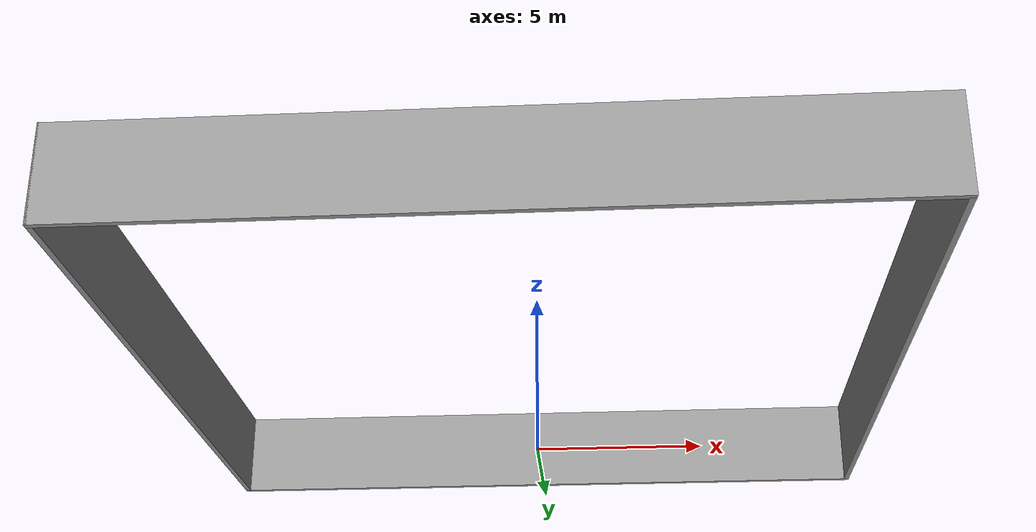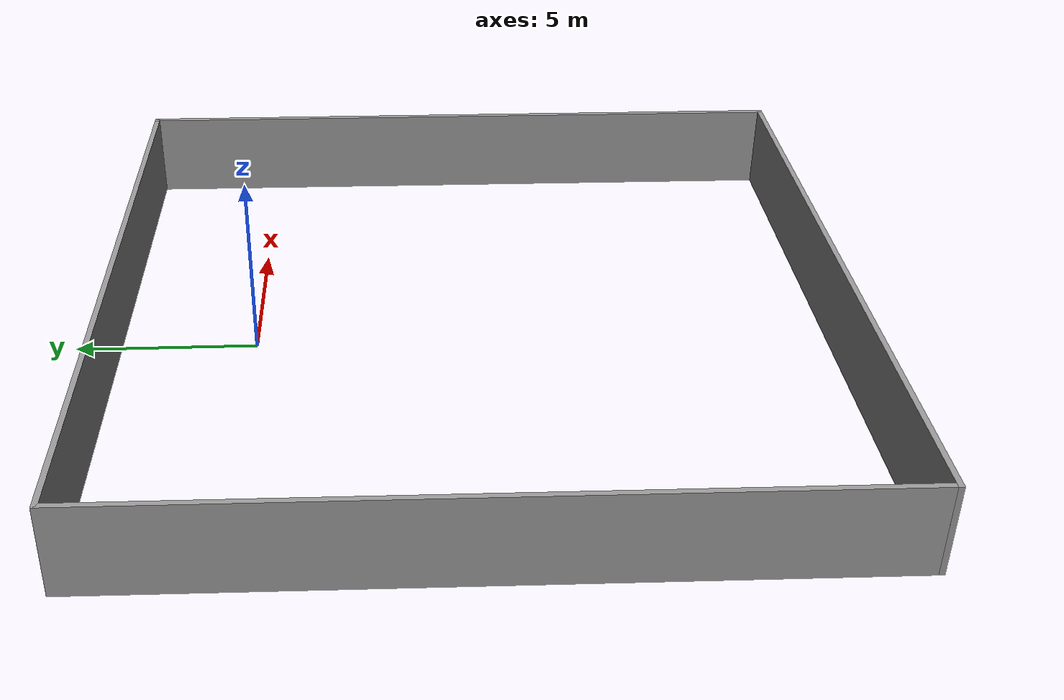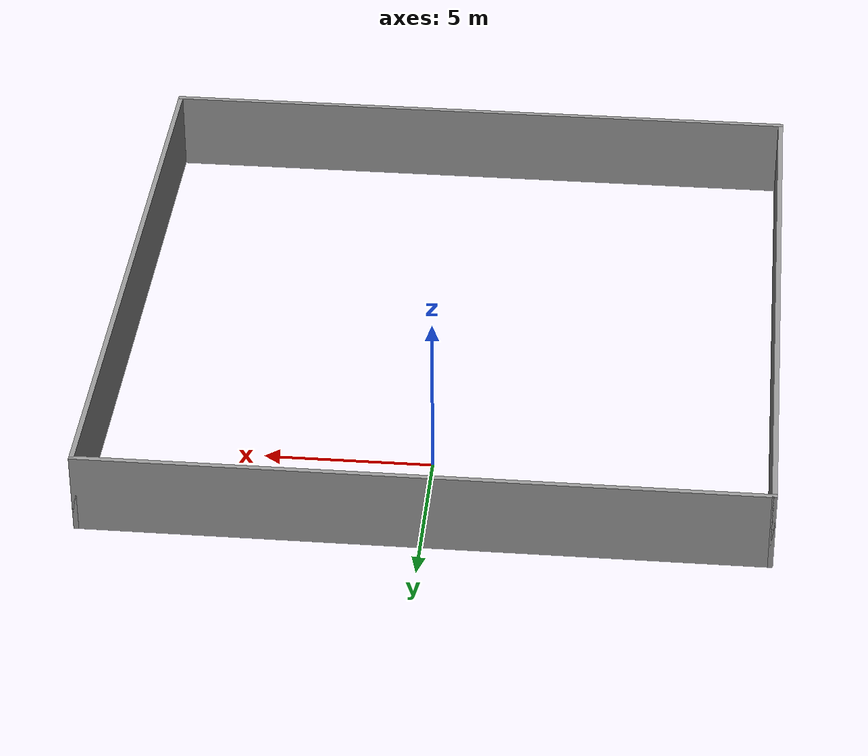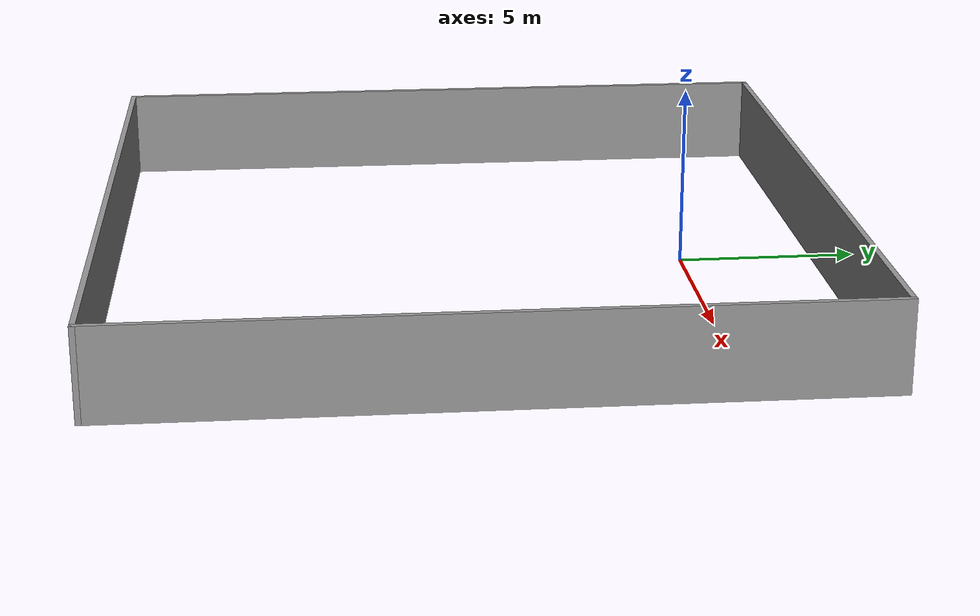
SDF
<?xml version='1.0'?>
<sdf version='1.7'>
  <model name='square_20_20'>
    <pose>-0.012647 -6.11325 0 0 -0 0</pose>
    <link name='Wall_0'>
      <collision name='Wall_0_Collision'>
        <geometry>
          <box>
            <size>20 0.15 2.5</size>
          </box>
        </geometry>
        <pose>0 0 1.25 0 -0 0</pose>
      </collision>
      <visual name='Wall_0_Visual'>
        <pose>0 0 1.25 0 -0 0</pose>
        <geometry>
          <box>
            <size>20 0.15 2.5</size>
          </box>
        </geometry>
        <material>
          <script>
            <uri>file://media/materials/scripts/gazebo.material</uri>
            <name>Gazebo/Grey</name>
          </script>
          <ambient>1 1 1 1</ambient>
        </material>
        <meta>
          <layer>0</layer>
        </meta>
      </visual>
      <pose>-0 -9.925 0 0 -0 0</pose>
    </link>
    <link name='Wall_2'>
      <collision name='Wall_2_Collision'>
        <geometry>
          <box>
            <size>20 0.15 2.5</size>
          </box>
        </geometry>
        <pose>0 0 1.25 0 -0 0</pose>
      </collision>
      <visual name='Wall_2_Visual'>
        <pose>0 0 1.25 0 -0 0</pose>
        <geometry>
          <box>
            <size>20 0.15 2.5</size>
          </box>
        </geometry>
        <material>
          <script>
            <uri>file://media/materials/scripts/gazebo.material</uri>
            <name>Gazebo/Grey</name>
          </script>
          <ambient>1 1 1 1</ambient>
        </material>
        <meta>
          <layer>0</layer>
        </meta>
      </visual>
      <pose>-9.925 -0 0 0 -0 1.5708</pose>
    </link>
    <link name='Wall_3'>
      <collision name='Wall_3_Collision'>
        <geometry>
          <box>
            <size>20 0.15 2.5</size>
          </box>
        </geometry>
        <pose>0 0 1.25 0 -0 0</pose>
      </collision>
      <visual name='Wall_3_Visual'>
        <pose>0 0 1.25 0 -0 0</pose>
        <geometry>
          <box>
            <size>20 0.15 2.5</size>
          </box>
        </geometry>
        <material>
          <script>
            <uri>file://media/materials/scripts/gazebo.material</uri>
            <name>Gazebo/Grey</name>
          </script>
          <ambient>1 1 1 1</ambient>
        </material>
        <meta>
          <layer>0</layer>
        </meta>
      </visual>
      <pose>-0 9.925 0 0 -0 0</pose>
    </link>
    <link name='Wall_5'>
      <collision name='Wall_5_Collision'>
        <geometry>
          <box>
            <size>20 0.15 2.5</size>
          </box>
        </geometry>
        <pose>0 0 1.25 0 -0 0</pose>
      </collision>
      <visual name='Wall_5_Visual'>
        <pose>0 0 1.25 0 -0 0</pose>
        <geometry>
          <box>
            <size>20 0.15 2.5</size>
          </box>
        </geometry>
        <material>
          <script>
            <uri>file://media/materials/scripts/gazebo.material</uri>
            <name>Gazebo/Grey</name>
          </script>
          <ambient>1 1 1 1</ambient>
        </material>
        <meta>
          <layer>0</layer>
        </meta>
      </visual>
      <pose>9.925 -0 0 0 -0 -1.5708</pose>
    </link>
    <static>1</static>
  </model>
</sdf>
